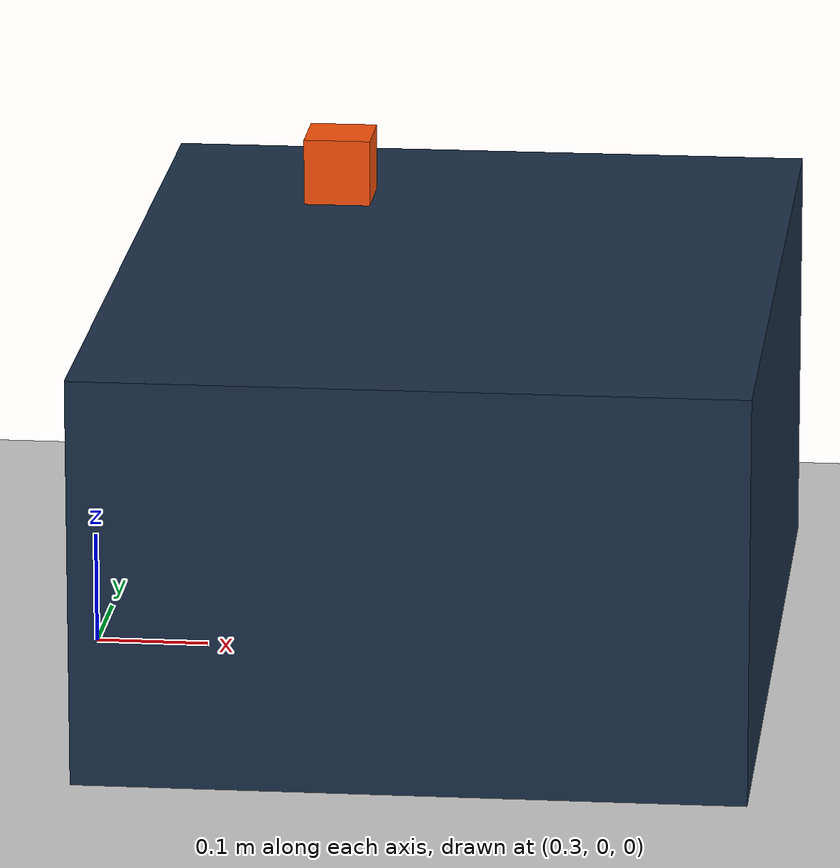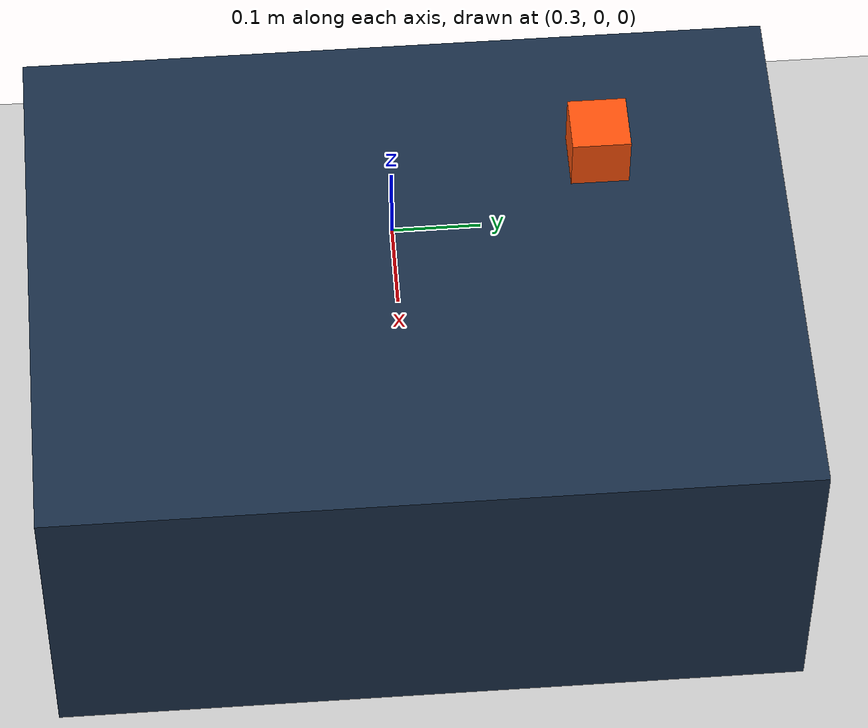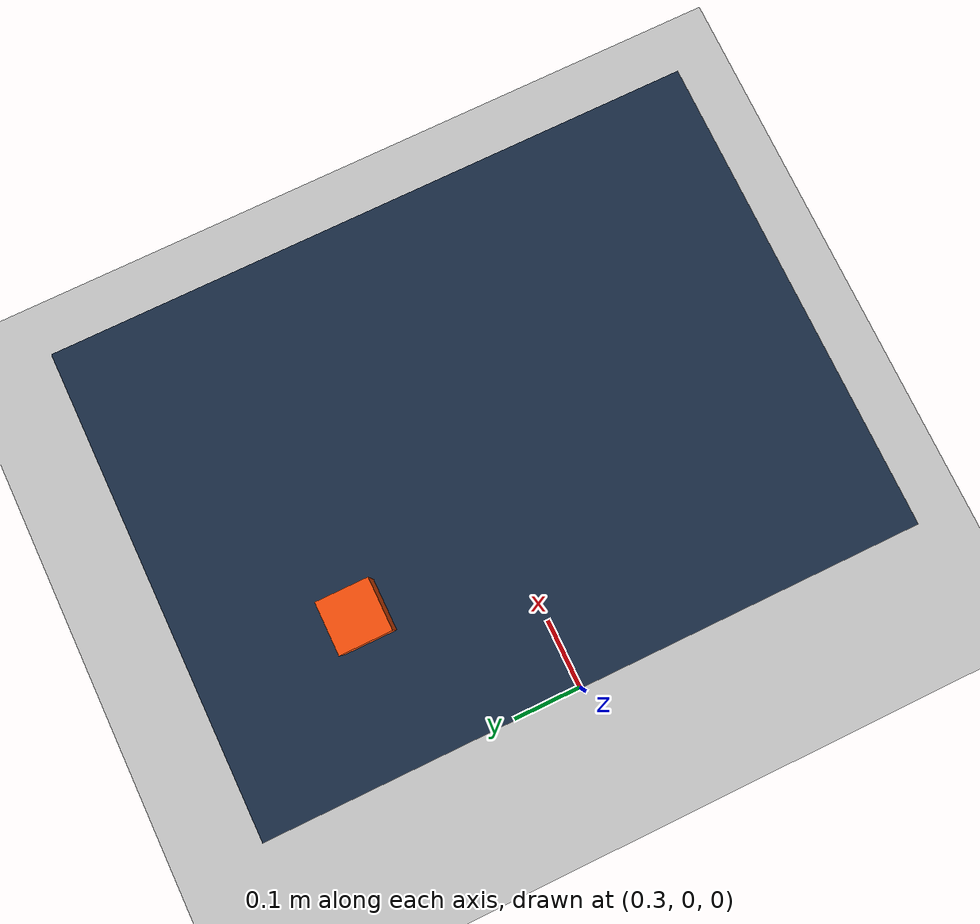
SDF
<?xml version="1.0"?>
<sdf version="1.6">
  <world name="simple_arm_pick_place">
    <gravity>0 0 -9.81</gravity>
    <physics type="ode">
      <real_time_update_rate>1000</real_time_update_rate>
      <max_step_size>0.001</max_step_size>
      <ode><solver><iters>100</iters></solver></ode>
    </physics>
    <scene>
      <ambient>0.35 0.40 0.50 1</ambient>
      <background>0.05 0.08 0.13 1</background>
      <shadows>true</shadows>
    </scene>
    <gui fullscreen="0">
      <camera name="user_camera">
        <pose>1.65 -1.65 1.25 0 0.40 2.35</pose>
        <view_controller>orbit</view_controller>
      </camera>
    </gui>

    <include><uri>model://ground_plane</uri></include>
    <include><uri>model://sun</uri></include>

    <model name="work_table">
      <static>true</static>
      <pose>0.62 0 0.18 0 0 0</pose>
      <link name="link">
        <collision name="collision">
          <geometry><box><size>0.58 0.78 0.36</size></box></geometry>
        </collision>
        <visual name="visual">
          <geometry><box><size>0.58 0.78 0.36</size></box></geometry>
          <material>
            <ambient>0.08 0.12 0.18 1</ambient>
            <diffuse>0.10 0.18 0.28 1</diffuse>
            <specular>0.35 0.45 0.60 1</specular>
          </material>
        </visual>
      </link>
    </model>

    <model name="pick_cube">
      <pose>0.50 0.20 0.395 0 0 0</pose>
      <link name="link">
        <inertial>
          <mass>0.08</mass>
          <inertia><ixx>0.000048</ixx><iyy>0.000048</iyy><izz>0.000048</izz></inertia>
        </inertial>
        <collision name="collision">
          <geometry><box><size>0.06 0.06 0.06</size></box></geometry>
          <surface><friction><ode><mu>1.2</mu><mu2>1.2</mu2></ode></friction></surface>
        </collision>
        <visual name="visual">
          <geometry><box><size>0.06 0.06 0.06</size></box></geometry>
          <material>
            <ambient>1.0 0.22 0.03 1</ambient>
            <diffuse>1.0 0.32 0.04 1</diffuse>
            <specular>0.50 0.20 0.05 1</specular>
          </material>
        </visual>
      </link>
    </model>
  </world>
</sdf>
